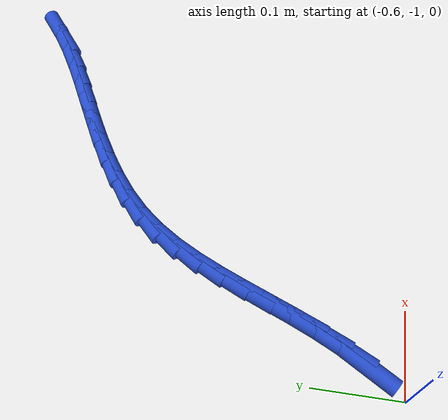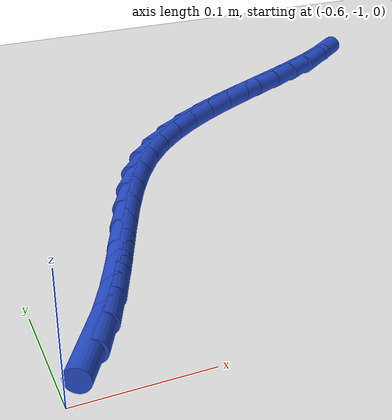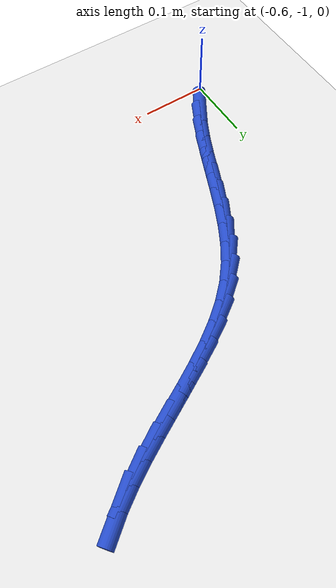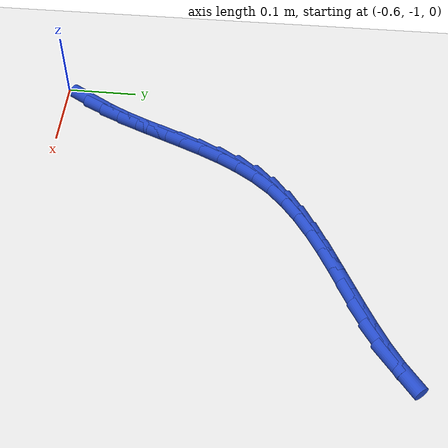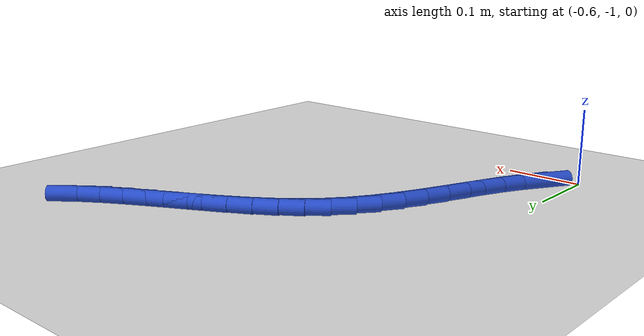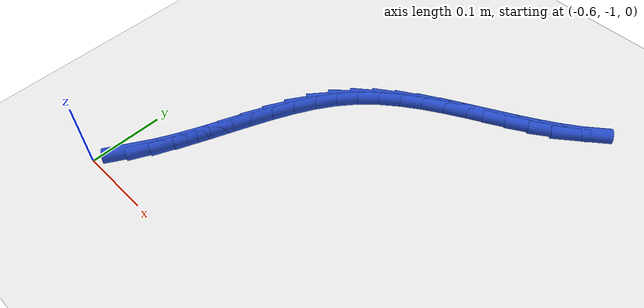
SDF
<sdf version="1.6">
 <world name="default">
  <model name="ground_plane">
   <static>1</static>
   <link name="link">
    <collision name="collision">
     <geometry><plane><normal>0 0 1</normal><size>100 100</size></plane></geometry>
     <surface><friction><ode><mu>100</mu><mu2>50</mu2></ode></friction></surface>
    </collision>
    <visual name="visual">
     <cast_shadows>0</cast_shadows>
     <geometry><plane><normal>0 0 1</normal><size>100 100</size></plane></geometry>
     <material>
      <script><uri>file://media/materials/scripts/gazebo.material</uri><name>Gazebo/WhiteGlow</name></script>
     </material>
    </visual>
   </link>
  </model>
  <model name="line">
   <link name="link_211">
    <pose>-0.5689187216298844 -0.9553646300807391 0.01 0 1.57 1.028026186381238</pose>
    <collision name="collision">
     <geometry><cylinder><radius>0.01</radius><length>0.08</length></cylinder></geometry>
    </collision>
    <visual name="visual">
     <material>
      <script><name>Gazebo/Blue</name><uri>file://media/materials/scripts/gazebo.material</uri></script>
     </material>
     <geometry><cylinder><radius>0.01</radius><length>0.08</length></cylinder></geometry>
    </visual>
   </link>
   <link name="link_212">
    <pose>-0.553838869131862 -0.9303649322916635 0.01 0 1.57 1.1020013780933111</pose>
    <collision name="collision">
     <geometry><cylinder><radius>0.01</radius><length>0.08</length></cylinder></geometry>
    </collision>
    <visual name="visual">
     <material>
      <script><name>Gazebo/Blue</name><uri>file://media/materials/scripts/gazebo.material</uri></script>
     </material>
     <geometry><cylinder><radius>0.01</radius><length>0.08</length></cylinder></geometry>
    </visual>
   </link>
   <link name="link_213">
    <pose>-0.5402851373535278 -0.9036027455783572 0.01 0 1.57 1.1508236161277117</pose>
    <collision name="collision">
     <geometry><cylinder><radius>0.01</radius><length>0.08</length></cylinder></geometry>
    </collision>
    <visual name="visual">
     <material>
      <script><name>Gazebo/Blue</name><uri>file://media/materials/scripts/gazebo.material</uri></script>
     </material>
     <geometry><cylinder><radius>0.01</radius><length>0.08</length></cylinder></geometry>
    </visual>
   </link>
   <link name="link_214">
    <pose>-0.5277707055079254 -0.8755774017638429 0.01 0 1.57 1.1769981333171278</pose>
    <collision name="collision">
     <geometry><cylinder><radius>0.01</radius><length>0.08</length></cylinder></geometry>
    </collision>
    <visual name="visual">
     <material>
      <script><name>Gazebo/Blue</name><uri>file://media/materials/scripts/gazebo.material</uri></script>
     </material>
     <geometry><cylinder><radius>0.01</radius><length>0.08</length></cylinder></geometry>
    </visual>
   </link>
   <link name="link_215">
    <pose>-0.5158087528080988 -0.8467882326711442 0.01 0 1.57 1.1821620127238313</pose>
    <collision name="collision">
     <geometry><cylinder><radius>0.01</radius><length>0.08</length></cylinder></geometry>
    </collision>
    <visual name="visual">
     <material>
      <script><name>Gazebo/Blue</name><uri>file://media/materials/scripts/gazebo.material</uri></script>
     </material>
     <geometry><cylinder><radius>0.01</radius><length>0.08</length></cylinder></geometry>
    </visual>
   </link>
   <link name="link_216">
    <pose>-0.503912458467092 -0.8177345701232841 0.01 0 1.57 1.166886068152089</pose>
    <collision name="collision">
     <geometry><cylinder><radius>0.01</radius><length>0.08</length></cylinder></geometry>
    </collision>
    <visual name="visual">
     <material>
      <script><name>Gazebo/Blue</name><uri>file://media/materials/scripts/gazebo.material</uri></script>
     </material>
     <geometry><cylinder><radius>0.01</radius><length>0.08</length></cylinder></geometry>
    </visual>
   </link>
   <link name="link_217">
    <pose>-0.49159500169794856 -0.7889157459432856 0.01 0 1.57 1.1306875634817104</pose>
    <collision name="collision">
     <geometry><cylinder><radius>0.01</radius><length>0.08</length></cylinder></geometry>
    </collision>
    <visual name="visual">
     <material>
      <script><name>Gazebo/Blue</name><uri>file://media/materials/scripts/gazebo.material</uri></script>
     </material>
     <geometry><cylinder><radius>0.01</radius><length>0.08</length></cylinder></geometry>
    </visual>
   </link>
   <link name="link_218">
    <pose>-0.4783695617137127 -0.760831091954172 0.01 0 1.57 1.0721915516573146</pose>
    <collision name="collision">
     <geometry><cylinder><radius>0.01</radius><length>0.08</length></cylinder></geometry>
    </collision>
    <visual name="visual">
     <material>
      <script><name>Gazebo/Blue</name><uri>file://media/materials/scripts/gazebo.material</uri></script>
     </material>
     <geometry><cylinder><radius>0.01</radius><length>0.08</length></cylinder></geometry>
    </visual>
   </link>
   <link name="link_219">
    <pose>-0.4637493177274281 -0.7339799399789667 0.01 0 1.57 0.9895400104816962</pose>
    <collision name="collision">
     <geometry><cylinder><radius>0.01</radius><length>0.08</length></cylinder></geometry>
    </collision>
    <visual name="visual">
     <material>
      <script><name>Gazebo/Blue</name><uri>file://media/materials/scripts/gazebo.material</uri></script>
     </material>
     <geometry><cylinder><radius>0.01</radius><length>0.08</length></cylinder></geometry>
    </visual>
   </link>
   <link name="link_220">
    <pose>-0.44724744895213864 -0.7088616218406927 0.01 0 1.57 0.881627492642774</pose>
    <collision name="collision">
     <geometry><cylinder><radius>0.01</radius><length>0.08</length></cylinder></geometry>
    </collision>
    <visual name="visual">
     <material>
      <script><name>Gazebo/Blue</name><uri>file://media/materials/scripts/gazebo.material</uri></script>
     </material>
     <geometry><cylinder><radius>0.01</radius><length>0.08</length></cylinder></geometry>
    </visual>
   </link>
   <link name="link_221">
    <pose>-0.4283846337565129 -0.6859681811523161 0.01 0 1.57 0.765848990936026</pose>
    <collision name="collision">
     <geometry><cylinder><radius>0.01</radius><length>0.08</length></cylinder></geometry>
    </collision>
    <visual name="visual">
     <material>
      <script><name>Gazebo/Blue</name><uri>file://media/materials/scripts/gazebo.material</uri></script>
     </material>
     <geometry><cylinder><radius>0.01</radius><length>0.08</length></cylinder></geometry>
    </visual>
   </link>
   <link name="link_222">
    <pose>-0.40704057261090504 -0.6654427384449042 0.01 0 1.57 0.6684898526951616</pose>
    <collision name="collision">
     <geometry><cylinder><radius>0.01</radius><length>0.08</length></cylinder></geometry>
    </collision>
    <visual name="visual">
     <material>
      <script><name>Gazebo/Blue</name><uri>file://media/materials/scripts/gazebo.material</uri></script>
     </material>
     <geometry><cylinder><radius>0.01</radius><length>0.08</length></cylinder></geometry>
    </visual>
   </link>
   <link name="link_223">
    <pose>-0.38360464957669155 -0.646933067671869 0.01 0 1.57 0.5921494025632081</pose>
    <collision name="collision">
     <geometry><cylinder><radius>0.01</radius><length>0.08</length></cylinder></geometry>
    </collision>
    <visual name="visual">
     <material>
      <script><name>Gazebo/Blue</name><uri>file://media/materials/scripts/gazebo.material</uri></script>
     </material>
     <geometry><cylinder><radius>0.01</radius><length>0.08</length></cylinder></geometry>
    </visual>
   </link>
   <link name="link_224">
    <pose>-0.35850504477863854 -0.6300492380271102 0.01 0 1.57 0.5361326284149648</pose>
    <collision name="collision">
     <geometry><cylinder><radius>0.01</radius><length>0.08</length></cylinder></geometry>
    </collision>
    <visual name="visual">
     <material>
      <script><name>Gazebo/Blue</name><uri>file://media/materials/scripts/gazebo.material</uri></script>
     </material>
     <geometry><cylinder><radius>0.01</radius><length>0.08</length></cylinder></geometry>
    </visual>
   </link>
   <link name="link_225">
    <pose>-0.3321699383415124 -0.6144013187045277 0.01 0 1.57 0.49926094033157725</pose>
    <collision name="collision">
     <geometry><cylinder><radius>0.01</radius><length>0.08</length></cylinder></geometry>
    </collision>
    <visual name="visual">
     <material>
      <script><name>Gazebo/Blue</name><uri>file://media/materials/scripts/gazebo.material</uri></script>
     </material>
     <geometry><cylinder><radius>0.01</radius><length>0.08</length></cylinder></geometry>
    </visual>
   </link>
   <link name="link_226">
    <pose>-0.3050275103900793 -0.5995993788980213 0.01 0 1.57 0.4805105329218588</pose>
    <collision name="collision">
     <geometry><cylinder><radius>0.01</radius><length>0.08</length></cylinder></geometry>
    </collision>
    <visual name="visual">
     <material>
      <script><name>Gazebo/Blue</name><uri>file://media/materials/scripts/gazebo.material</uri></script>
     </material>
     <geometry><cylinder><radius>0.01</radius><length>0.08</length></cylinder></geometry>
    </visual>
   </link>
   <link name="link_227">
    <pose>-0.27750594104910564 -0.5852534878014907 0.01 0 1.57 0.4793490037205042</pose>
    <collision name="collision">
     <geometry><cylinder><radius>0.01</radius><length>0.08</length></cylinder></geometry>
    </collision>
    <visual name="visual">
     <material>
      <script><name>Gazebo/Blue</name><uri>file://media/materials/scripts/gazebo.material</uri></script>
     </material>
     <geometry><cylinder><radius>0.01</radius><length>0.08</length></cylinder></geometry>
    </visual>
   </link>
   <link name="link_228">
    <pose>-0.2500334104433577 -0.5709737146088355 0.01 0 1.57 0.4958820252992003</pose>
    <collision name="collision">
     <geometry><cylinder><radius>0.01</radius><length>0.08</length></cylinder></geometry>
    </collision>
    <visual name="visual">
     <material>
      <script><name>Gazebo/Blue</name><uri>file://media/materials/scripts/gazebo.material</uri></script>
     </material>
     <geometry><cylinder><radius>0.01</radius><length>0.08</length></cylinder></geometry>
    </visual>
   </link>
   <link name="link_229">
    <pose>-0.2230380986976017 -0.556370128513956 0.01 0 1.57 0.5308785514205399</pose>
    <collision name="collision">
     <geometry><cylinder><radius>0.01</radius><length>0.08</length></cylinder></geometry>
    </collision>
    <visual name="visual">
     <material>
      <script><name>Gazebo/Blue</name><uri>file://media/materials/scripts/gazebo.material</uri></script>
     </material>
     <geometry><cylinder><radius>0.01</radius><length>0.08</length></cylinder></geometry>
    </visual>
   </link>
   <link name="link_230">
    <pose>-0.19694818593660401 -0.5410527987107517 0.01 0 1.57 0.5856718076851902</pose>
    <collision name="collision">
     <geometry><cylinder><radius>0.01</radius><length>0.08</length></cylinder></geometry>
    </collision>
    <visual name="visual">
     <material>
      <script><name>Gazebo/Blue</name><uri>file://media/materials/scripts/gazebo.material</uri></script>
     </material>
     <geometry><cylinder><radius>0.01</radius><length>0.08</length></cylinder></geometry>
    </visual>
   </link>
   <link name="link_231">
    <pose>-0.17219185228513076 -0.5246317943931224 0.01 0 1.57 0.6618539495855572</pose>
    <collision name="collision">
     <geometry><cylinder><radius>0.01</radius><length>0.08</length></cylinder></geometry>
    </collision>
    <visual name="visual">
     <material>
      <script><name>Gazebo/Blue</name><uri>file://media/materials/scripts/gazebo.material</uri></script>
     </material>
     <geometry><cylinder><radius>0.01</radius><length>0.08</length></cylinder></geometry>
    </visual>
   </link>
  </model>
 </world>
</sdf>
